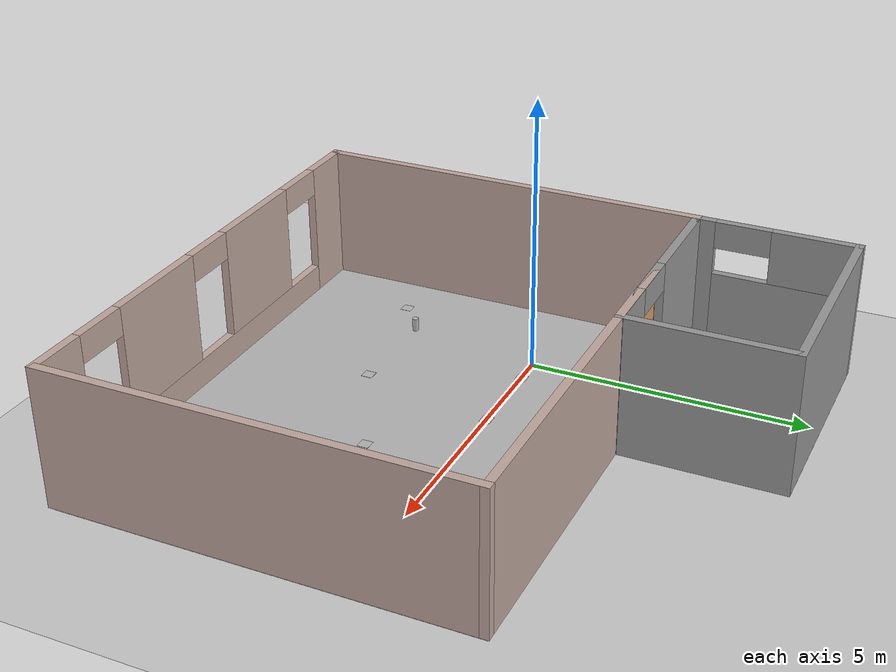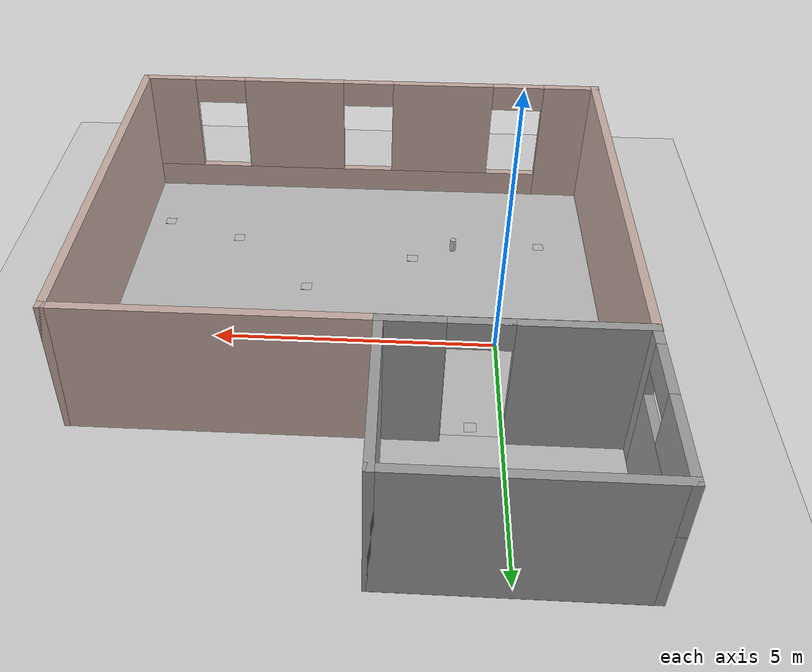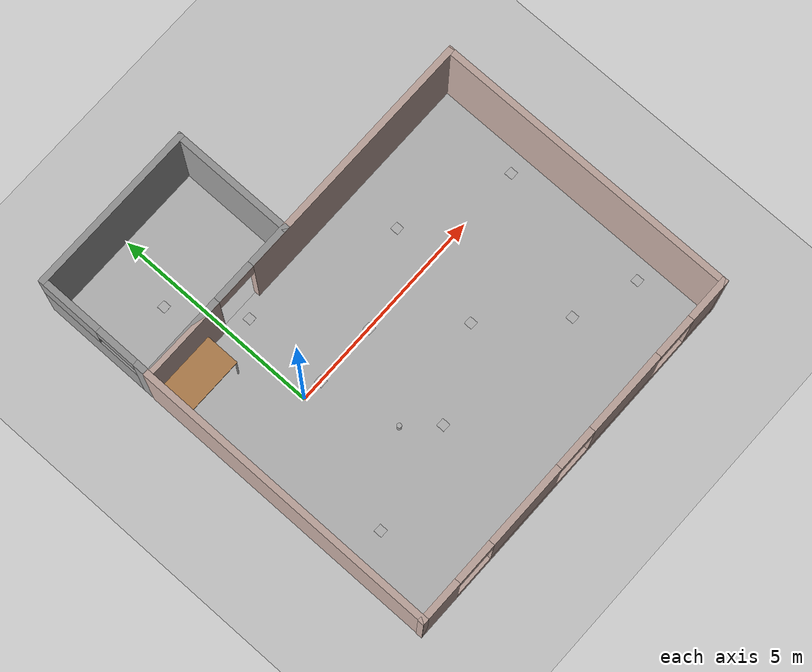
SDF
<sdf version="1.6">
 <world name="default">
  <light name="sun" type="directional">
   <pose>0 0 10 0 -0 0</pose>
   <diffuse>0.8 0.8 0.8 1</diffuse>
   <specular>0.1 0.1 0.1 1</specular>
   <attenuation>
    <range>1000</range>
    <constant>0.9</constant>
    <linear>0.01</linear>
    <quadratic>0.001</quadratic>
   </attenuation>
   <direction>-0.5 0.5 -1</direction>
  </light>
  <model name="ground_plane">
   <static>1</static>
   <link name="link">
    <collision name="collision">
     <geometry><plane><normal>0 0 1</normal><size>100 100</size></plane></geometry>
     <surface><friction><ode><mu>100</mu><mu2>50</mu2></ode></friction></surface>
    </collision>
    <visual name="visual">
     <cast_shadows>0</cast_shadows>
     <geometry><plane><normal>0 0 1</normal><size>100 100</size></plane></geometry>
     <material>
      <script><uri>file://media/materials/scripts/gazebo.material</uri><name>Gazebo/Grey</name></script>
     </material>
    </visual>
   </link>
  </model>
  <gravity>0 0 -9.8</gravity>
  <magnetic_field>6e-06 2.3e-05 -4.2e-05</magnetic_field>
  <atmosphere type="adiabatic"/>
  <physics name="default_physics" default="0" type="ode">
   <max_step_size>0.001</max_step_size>
   <real_time_factor>1</real_time_factor>
   <real_time_update_rate>1000</real_time_update_rate>
  </physics>
  <scene><ambient>0.4 0.4 0.4 1</ambient><background>0.7 0.7 0.7 1</background><shadows>1</shadows></scene>
  <spherical_coordinates>
   <surface_model>EARTH_WGS84</surface_model>
   <latitude_deg>0</latitude_deg>
   <longitude_deg>0</longitude_deg>
   <elevation>0</elevation>
   <heading_deg>0</heading_deg>
  </spherical_coordinates>
  <model name="Room">
   <pose>2.49494 -1.375 0 0 -0 0</pose>
   <link name="Wall_10">
    <collision name="Wall_10_Collision">
     <geometry><box><size>7.4 0.15 2.5</size></box></geometry>
     <pose>0 0 1.25 0 -0 0</pose>
    </collision>
    <visual name="Wall_10_Visual">
     <pose>0 0 1.25 0 -0 0</pose>
     <geometry><box><size>7.4 0.15 2.5</size></box></geometry>
     <material>
      <script><uri>file://media/materials/scripts/gazebo.material</uri><name>Gazebo/Grey</name></script>
      <ambient>0.760784 0.662745 0.627451 1</ambient>
     </material>
    </visual>
    <pose>-4.49494 0 0 0 -0 1.5708</pose>
   </link>
   <link name="Wall_12">
    <collision name="Wall_12_Collision">
     <geometry><box><size>7.4 0.15 2.5</size></box></geometry>
     <pose>0 0 1.25 0 -0 0</pose>
    </collision>
    <visual name="Wall_12_Visual">
     <pose>0 0 1.25 0 -0 0</pose>
     <geometry><box><size>7.4 0.15 2.5</size></box></geometry>
     <material>
      <script><uri>file://media/materials/scripts/gazebo.material</uri><name>Gazebo/Grey</name></script>
      <ambient>0.760784 0.662745 0.627451 1</ambient>
     </material>
    </visual>
    <pose>4.50506 0 0 0 -0 1.5708</pose>
   </link>
   <link name="Wall_3">
    <pose>0.005064 3.625 0 0 -0 0</pose>
    <visual name="Wall_3_Visual_0">
     <pose>-3.5375 0 1.25 0 -0 0</pose>
     <geometry><box><size>2.075 0.15 2.5</size></box></geometry>
     <material>
      <script><uri>file://media/materials/scripts/gazebo.material</uri><name>Gazebo/Grey</name></script>
      <ambient>0.760784 0.662745 0.627451 1</ambient>
     </material>
    </visual>
    <collision name="Wall_3_Collision_0">
     <geometry><box><size>2.075 0.15 2.5</size></box></geometry>
     <pose>-3.5375 0 1.25 0 -0 0</pose>
    </collision>
    <visual name="Wall_3_Visual_1">
     <pose>1.5375 0 1.25 0 -0 0</pose>
     <geometry><box><size>6.075 0.15 2.5</size></box></geometry>
     <material>
      <script><uri>file://media/materials/scripts/gazebo.material</uri><name>Gazebo/Grey</name></script>
      <ambient>0.760784 0.662745 0.627451 1</ambient>
     </material>
    </visual>
    <collision name="Wall_3_Collision_1">
     <geometry><box><size>6.075 0.15 2.5</size></box></geometry>
     <pose>1.5375 0 1.25 0 -0 0</pose>
    </collision>
    <visual name="Wall_3_Visual_2">
     <pose>-2 0 2.25 0 -0 0</pose>
     <geometry><box><size>1 0.15 0.5</size></box></geometry>
     <material>
      <script><uri>file://media/materials/scripts/gazebo.material</uri><name>Gazebo/Grey</name></script>
      <ambient>0.760784 0.662745 0.627451 1</ambient>
     </material>
    </visual>
    <collision name="Wall_3_Collision_2">
     <geometry><box><size>1 0.15 0.5</size></box></geometry>
     <pose>-2 0 2.25 0 -0 0</pose>
    </collision>
   </link>
   <link name="Wall_8">
    <pose>-0.005064 -3.625 0 0 -0 0</pose>
    <visual name="Wall_8_Visual_0">
     <pose>-4.03244 0 1.25 0 -0 0</pose>
     <geometry><box><size>1.08513 0.15 2.5</size></box></geometry>
     <material>
      <script><uri>file://media/materials/scripts/gazebo.material</uri><name>Gazebo/Grey</name></script>
      <ambient>0.760784 0.662745 0.627451 1</ambient>
     </material>
    </visual>
    <collision name="Wall_8_Collision_0">
     <geometry><box><size>1.08513 0.15 2.5</size></box></geometry>
     <pose>-4.03244 0 1.25 0 -0 0</pose>
    </collision>
    <visual name="Wall_8_Visual_1">
     <pose>0.542564 0 0.25 0 -0 0</pose>
     <geometry><box><size>8.06487 0.15 0.5</size></box></geometry>
     <material>
      <script><uri>file://media/materials/scripts/gazebo.material</uri><name>Gazebo/Grey</name></script>
      <ambient>0.760784 0.662745 0.627451 1</ambient>
     </material>
    </visual>
    <collision name="Wall_8_Collision_1">
     <geometry><box><size>8.06487 0.15 0.5</size></box></geometry>
     <pose>0.542564 0 0.25 0 -0 0</pose>
    </collision>
    <visual name="Wall_8_Visual_2">
     <pose>-1.48987 0 1.5 0 -0 0</pose>
     <geometry><box><size>2 0.15 2</size></box></geometry>
     <material>
      <script><uri>file://media/materials/scripts/gazebo.material</uri><name>Gazebo/Grey</name></script>
      <ambient>0.760784 0.662745 0.627451 1</ambient>
     </material>
    </visual>
    <collision name="Wall_8_Collision_2">
     <geometry><box><size>2 0.15 2</size></box></geometry>
     <pose>-1.48987 0 1.5 0 -0 0</pose>
    </collision>
    <visual name="Wall_8_Visual_3">
     <pose>1.51013 0 1.5 0 -0 0</pose>
     <geometry><box><size>2 0.15 2</size></box></geometry>
     <material>
      <script><uri>file://media/materials/scripts/gazebo.material</uri><name>Gazebo/Grey</name></script>
      <ambient>0.760784 0.662745 0.627451 1</ambient>
     </material>
    </visual>
    <collision name="Wall_8_Collision_3">
     <geometry><box><size>2 0.15 2</size></box></geometry>
     <pose>1.51013 0 1.5 0 -0 0</pose>
    </collision>
    <visual name="Wall_8_Visual_4">
     <pose>4.04256 0 1.5 0 -0 0</pose>
     <geometry><box><size>1.06487 0.15 2</size></box></geometry>
     <material>
      <script><uri>file://media/materials/scripts/gazebo.material</uri><name>Gazebo/Grey</name></script>
      <ambient>0.760784 0.662745 0.627451 1</ambient>
     </material>
    </visual>
    <collision name="Wall_8_Collision_4">
     <geometry><box><size>1.06487 0.15 2</size></box></geometry>
     <pose>4.04256 0 1.5 0 -0 0</pose>
    </collision>
    <visual name="Wall_8_Visual_5">
     <pose>-2.98987 0 2.25 0 -0 0</pose>
     <geometry><box><size>1 0.15 0.5</size></box></geometry>
     <material>
      <script><uri>file://media/materials/scripts/gazebo.material</uri><name>Gazebo/Grey</name></script>
      <ambient>0.760784 0.662745 0.627451 1</ambient>
     </material>
    </visual>
    <collision name="Wall_8_Collision_5">
     <geometry><box><size>1 0.15 0.5</size></box></geometry>
     <pose>-2.98987 0 2.25 0 -0 0</pose>
    </collision>
    <visual name="Wall_8_Visual_6">
     <pose>0.010128 0 2.25 0 -0 0</pose>
     <geometry><box><size>1 0.15 0.5</size></box></geometry>
     <material>
      <script><uri>file://media/materials/scripts/gazebo.material</uri><name>Gazebo/Grey</name></script>
      <ambient>0.760784 0.662745 0.627451 1</ambient>
     </material>
    </visual>
    <collision name="Wall_8_Collision_6">
     <geometry><box><size>1 0.15 0.5</size></box></geometry>
     <pose>0.010128 0 2.25 0 -0 0</pose>
    </collision>
    <visual name="Wall_8_Visual_7">
     <pose>3.01013 0 2.25 0 -0 0</pose>
     <geometry><box><size>1 0.15 0.5</size></box></geometry>
     <material>
      <script><uri>file://media/materials/scripts/gazebo.material</uri><name>Gazebo/Grey</name></script>
      <ambient>0.760784 0.662745 0.627451 1</ambient>
     </material>
    </visual>
    <collision name="Wall_8_Collision_7">
     <geometry><box><size>1 0.15 0.5</size></box></geometry>
     <pose>3.01013 0 2.25 0 -0 0</pose>
    </collision>
   </link>
   <static>1</static>
  </model>
  <model name="bathroom_3">
   <pose>0.008604 3.681 0 0 -0 0</pose>
   <link name="Wall_1">
    <pose>0 -1.425 0 0 -0 3.14159</pose>
    <visual name="Wall_1_Visual_0">
     <pose>-1.5375 0 1.25 0 -0 0</pose>
     <geometry><box><size>1.075 0.15 2.5</size></box></geometry>
     <material>
      <script><uri>file://media/materials/scripts/gazebo.material</uri><name>Gazebo/Grey</name></script>
      <ambient>1 1 1 1</ambient>
     </material>
    </visual>
    <collision name="Wall_1_Collision_0">
     <geometry><box><size>1.075 0.15 2.5</size></box></geometry>
     <pose>-1.5375 0 1.25 0 -0 0</pose>
    </collision>
    <visual name="Wall_1_Visual_1">
     <pose>1.0375 0 1.25 0 -0 0</pose>
     <geometry><box><size>2.075 0.15 2.5</size></box></geometry>
     <material>
      <script><uri>file://media/materials/scripts/gazebo.material</uri><name>Gazebo/Grey</name></script>
      <ambient>1 1 1 1</ambient>
     </material>
    </visual>
    <collision name="Wall_1_Collision_1">
     <geometry><box><size>2.075 0.15 2.5</size></box></geometry>
     <pose>1.0375 0 1.25 0 -0 0</pose>
    </collision>
    <visual name="Wall_1_Visual_2">
     <pose>-0.5 0 2.25 0 -0 0</pose>
     <geometry><box><size>1 0.15 0.5</size></box></geometry>
     <material>
      <script><uri>file://media/materials/scripts/gazebo.material</uri><name>Gazebo/Grey</name></script>
      <ambient>1 1 1 1</ambient>
     </material>
    </visual>
    <collision name="Wall_1_Collision_2">
     <geometry><box><size>1 0.15 0.5</size></box></geometry>
     <pose>-0.5 0 2.25 0 -0 0</pose>
    </collision>
   </link>
   <link name="Wall_2">
    <pose>-2 0 0 0 -0 1.5708</pose>
    <visual name="Wall_2_Visual_0">
     <pose>-1.28705 0 1.25 0 -0 0</pose>
     <geometry><box><size>0.425904 0.15 2.5</size></box></geometry>
     <material>
      <script><uri>file://media/materials/scripts/gazebo.material</uri><name>Gazebo/Grey</name></script>
      <ambient>1 1 1 1</ambient>
     </material>
    </visual>
    <collision name="Wall_2_Collision_0">
     <geometry><box><size>0.425904 0.15 2.5</size></box></geometry>
     <pose>-1.28705 0 1.25 0 -0 0</pose>
    </collision>
    <visual name="Wall_2_Visual_1">
     <pose>0.212952 0 0.75 0 -0 0</pose>
     <geometry><box><size>2.5741 0.15 1.5</size></box></geometry>
     <material>
      <script><uri>file://media/materials/scripts/gazebo.material</uri><name>Gazebo/Grey</name></script>
      <ambient>1 1 1 1</ambient>
     </material>
    </visual>
    <collision name="Wall_2_Collision_1">
     <geometry><box><size>2.5741 0.15 1.5</size></box></geometry>
     <pose>0.212952 0 0.75 0 -0 0</pose>
    </collision>
    <visual name="Wall_2_Visual_2">
     <pose>0.712952 0 2 0 -0 0</pose>
     <geometry><box><size>1.5741 0.15 1</size></box></geometry>
     <material>
      <script><uri>file://media/materials/scripts/gazebo.material</uri><name>Gazebo/Grey</name></script>
      <ambient>1 1 1 1</ambient>
     </material>
    </visual>
    <collision name="Wall_2_Collision_2">
     <geometry><box><size>1.5741 0.15 1</size></box></geometry>
     <pose>0.712952 0 2 0 -0 0</pose>
    </collision>
    <visual name="Wall_2_Visual_3">
     <pose>-0.574096 0 2.25 0 -0 0</pose>
     <geometry><box><size>1 0.15 0.5</size></box></geometry>
     <material>
      <script><uri>file://media/materials/scripts/gazebo.material</uri><name>Gazebo/Grey</name></script>
      <ambient>1 1 1 1</ambient>
     </material>
    </visual>
    <collision name="Wall_2_Collision_3">
     <geometry><box><size>1 0.15 0.5</size></box></geometry>
     <pose>-0.574096 0 2.25 0 -0 0</pose>
    </collision>
   </link>
   <link name="Wall_3">
    <collision name="Wall_3_Collision">
     <geometry><box><size>4.15 0.15 2.5</size></box></geometry>
     <pose>0 0 1.25 0 -0 0</pose>
    </collision>
    <visual name="Wall_3_Visual">
     <pose>0 0 1.25 0 -0 0</pose>
     <geometry><box><size>4.15 0.15 2.5</size></box></geometry>
     <material>
      <script><uri>file://media/materials/scripts/gazebo.material</uri><name>Gazebo/Grey</name></script>
      <ambient>1 1 1 1</ambient>
     </material>
    </visual>
    <pose>0 1.425 0 0 -0 0</pose>
   </link>
   <link name="Wall_4">
    <collision name="Wall_4_Collision">
     <geometry><box><size>3 0.15 2.5</size></box></geometry>
     <pose>0 0 1.25 0 -0 0</pose>
    </collision>
    <visual name="Wall_4_Visual">
     <pose>0 0 1.25 0 -0 0</pose>
     <geometry><box><size>3 0.15 2.5</size></box></geometry>
     <material>
      <script><uri>file://media/materials/scripts/gazebo.material</uri><name>Gazebo/Grey</name></script>
      <ambient>1 1 1 1</ambient>
     </material>
    </visual>
    <pose>2 0 0 0 0 -1.5708</pose>
   </link>
   <static>1</static>
  </model>
  <model name="bathroom_floor">
   <static>1</static>
   <link name="link">
    <visual name="visual">
     <cast_shadows>0</cast_shadows>
     <geometry><box><size>4 3 0.005</size></box></geometry>
     <material>
      <script>
       <uri>model://bathroom_floor/materials/scripts</uri>
       <uri>model://bathroom_floor/materials/textures</uri>
       <name>bathroom_floor/Tile</name>
      </script>
     </material>
    </visual>
   </link>
   <pose>0.028247 3.68109 0 0 -0 0</pose>
  </model>
  <model name="room_floor">
   <static>1</static>
   <link name="link">
    <visual name="visual">
     <cast_shadows>0</cast_shadows>
     <geometry><box><size>9 7.25 0.005</size></box></geometry>
     <material>
      <script>
       <uri>model://room_floor/materials/scripts</uri>
       <uri>model://room_floor/materials/textures</uri>
       <name>room_floor/Terrazzo</name>
      </script>
     </material>
    </visual>
   </link>
   <pose>2.57641 -1.33129 0 0 -0 0</pose>
  </model>
  <model name="beer">
   <link name="link">
    <pose>0 0 0.115 0 -0 0</pose>
    <inertial>
     <mass>0.39</mass>
     <inertia><ixx>0.00058</ixx><ixy>0</ixy><ixz>0</ixz><iyy>0.00058</iyy><iyz>0</iyz><izz>0.00019</izz></inertia>
    </inertial>
    <collision name="collision">
     <geometry><cylinder><radius>0.055</radius><length>0.23</length></cylinder></geometry>
    </collision>
    <visual name="visual">
     <geometry><cylinder><radius>0.055</radius><length>0.23</length></cylinder></geometry>
     <material>
      <script>
       <uri>model://beer/materials/scripts</uri>
       <uri>model://beer/materials/textures</uri>
       <name>Beer/Diffuse</name>
      </script>
     </material>
    </visual>
   </link>
   <pose>0.759398 -1.93374 0.659991 1.1e-05 -2e-06 0.000655</pose>
  </model>
  <model name="table_1">
   <static>0</static>
   <link name="link">
    <collision name="surface">
     <pose>0 0 1 0 -0 0</pose>
     <geometry><box><size>1.5 0.8 0.03</size></box></geometry>
     <surface><friction><ode><mu>0.6</mu><mu2>0.6</mu2></ode></friction></surface>
    </collision>
    <visual name="visual1">
     <pose>0 0 1 0 -0 0</pose>
     <geometry><box><size>1.4 0.8 0.04</size></box></geometry>
     <material>
      <script><uri>file://media/materials/scripts/gazebo.material</uri><name>Gazebo/Wood</name></script>
     </material>
    </visual>
    <collision name="front_left_leg">
     <pose>0.68 0.38 0.5 0 -0 0</pose>
     <geometry><cylinder><radius>0.02</radius><length>1</length></cylinder></geometry>
    </collision>
    <visual name="front_left_leg">
     <pose>0.68 0.38 0.5 0 -0 0</pose>
     <geometry><cylinder><radius>0.02</radius><length>1</length></cylinder></geometry>
     <material>
      <script><uri>file://media/materials/scripts/gazebo.material</uri><name>Gazebo/Grey</name></script>
     </material>
    </visual>
    <collision name="front_right_leg">
     <pose>0.68 -0.38 0.5 0 -0 0</pose>
     <geometry><cylinder><radius>0.02</radius><length>1</length></cylinder></geometry>
    </collision>
    <visual name="front_right_leg">
     <pose>0.68 -0.38 0.5 0 -0 0</pose>
     <geometry><cylinder><radius>0.02</radius><length>1</length></cylinder></geometry>
     <material>
      <script><uri>file://media/materials/scripts/gazebo.material</uri><name>Gazebo/Grey</name></script>
     </material>
    </visual>
    <collision name="back_right_leg">
     <pose>-0.68 -0.38 0.5 0 -0 0</pose>
     <geometry><cylinder><radius>0.02</radius><length>1</length></cylinder></geometry>
    </collision>
    <visual name="back_right_leg">
     <pose>-0.68 -0.38 0.5 0 -0 0</pose>
     <geometry><cylinder><radius>0.02</radius><length>1</length></cylinder></geometry>
     <material>
      <script><uri>file://media/materials/scripts/gazebo.material</uri><name>Gazebo/Grey</name></script>
     </material>
    </visual>
    <collision name="back_left_leg">
     <pose>-0.68 0.38 0.5 0 -0 0</pose>
     <geometry><cylinder><radius>0.02</radius><length>1</length></cylinder></geometry>
    </collision>
    <visual name="back_left_leg">
     <pose>-0.68 0.38 0.5 0 -0 0</pose>
     <geometry><cylinder><radius>0.02</radius><length>1</length></cylinder></geometry>
     <material>
      <script><uri>file://media/materials/scripts/gazebo.material</uri><name>Gazebo/Grey</name></script>
     </material>
    </visual>
    <inertial>
     <inertia><ixx>1</ixx><ixy>0</ixy><ixz>0</ixz><iyy>1</iyy><iyz>0</iyz><izz>1</izz></inertia>
     <mass>1</mass>
    </inertial>
   </link>
   <pose>-1.19044 1.775 0.010901 -0 0.015575 2e-06</pose>
  </model>
  <model name="qr-O">
   <static>1</static>
   <link name="link">
    <visual name="visual">
     <cast_shadows>0</cast_shadows>
     <geometry><box><size>0.2 0.2 0.01</size></box></geometry>
     <material>
      <script>
       <uri>model://qr-O/materials/scripts</uri>
       <uri>model://qr-O/materials/textures</uri>
       <name>qr-O/Image</name>
      </script>
     </material>
    </visual>
   </link>
   <pose>0.5 0 0 0 -0 1.5708</pose>
  </model>
  <model name="qr-A">
   <static>1</static>
   <link name="link">
    <visual name="visual">
     <cast_shadows>0</cast_shadows>
     <geometry><box><size>0.2 0.2 0.01</size></box></geometry>
     <material>
      <script>
       <uri>model://qr-A/materials/scripts</uri>
       <uri>model://qr-A/materials/textures</uri>
       <name>qr-A/Image</name>
      </script>
     </material>
    </visual>
   </link>
   <pose>0.5 2 0 0 -0 1.5708</pose>
  </model>
  <model name="qr-B">
   <static>1</static>
   <link name="link">
    <visual name="visual">
     <cast_shadows>0</cast_shadows>
     <geometry><box><size>0.2 0.2 0.01</size></box></geometry>
     <material>
      <script>
       <uri>model://qr-B/materials/scripts</uri>
       <uri>model://qr-B/materials/textures</uri>
       <name>qr-B/Image</name>
      </script>
     </material>
    </visual>
   </link>
   <pose>-0.5 3.5 0 0 -0 1.5708</pose>
  </model>
  <model name="qr-C">
   <static>1</static>
   <link name="link">
    <visual name="visual">
     <cast_shadows>0</cast_shadows>
     <geometry><box><size>0.2 0.2 0.01</size></box></geometry>
     <material>
      <script>
       <uri>model://qr-C/materials/scripts</uri>
       <uri>model://qr-C/materials/textures</uri>
       <name>qr-C/Image</name>
      </script>
     </material>
    </visual>
   </link>
   <pose>-1 -3 0 0 -0 1.5708</pose>
  </model>
  <model name="qr-D">
   <static>1</static>
   <link name="link">
    <visual name="visual">
     <cast_shadows>0</cast_shadows>
     <geometry><box><size>0.2 0.2 0.01</size></box></geometry>
     <material>
      <script>
       <uri>model://qr-D/materials/scripts</uri>
       <uri>model://qr-D/materials/textures</uri>
       <name>qr-D/Image</name>
      </script>
     </material>
    </visual>
   </link>
   <pose>2 0 0 0 -0 1.5708</pose>
  </model>
  <model name="qr-E">
   <static>1</static>
   <link name="link">
    <visual name="visual">
     <cast_shadows>0</cast_shadows>
     <geometry><box><size>0.2 0.2 0.01</size></box></geometry>
     <material>
      <script>
       <uri>model://qr-E/materials/scripts</uri>
       <uri>model://qr-E/materials/textures</uri>
       <name>qr-E/Image</name>
      </script>
     </material>
    </visual>
   </link>
   <pose>4 1 0 0 -0 1.5708</pose>
  </model>
  <model name="qr-F">
   <static>1</static>
   <link name="link">
    <visual name="visual">
     <cast_shadows>0</cast_shadows>
     <geometry><box><size>0.2 0.2 0.01</size></box></geometry>
     <material>
      <script>
       <uri>model://qr-F/materials/scripts</uri>
       <uri>model://qr-F/materials/textures</uri>
       <name>qr-F/Image</name>
      </script>
     </material>
    </visual>
   </link>
   <pose>3.5 -1.5 0 0 -0 1.5708</pose>
  </model>
  <model name="qr-G">
   <static>1</static>
   <link name="link">
    <visual name="visual">
     <cast_shadows>0</cast_shadows>
     <geometry><box><size>0.2 0.2 0.01</size></box></geometry>
     <material>
      <script>
       <uri>model://qr-G/materials/scripts</uri>
       <uri>model://qr-G/materials/textures</uri>
       <name>qr-G/Image</name>
      </script>
     </material>
    </visual>
   </link>
   <pose>1.5 -2.5 0 0 -0 1.5708</pose>
  </model>
  <model name="qr-I">
   <static>1</static>
   <link name="link">
    <visual name="visual">
     <cast_shadows>0</cast_shadows>
     <geometry><box><size>0.2 0.2 0.01</size></box></geometry>
     <material>
      <script>
       <uri>model://qr-I/materials/scripts</uri>
       <uri>model://qr-I/materials/textures</uri>
       <name>qr-I/Image</name>
      </script>
     </material>
    </visual>
   </link>
   <pose>6.5 -3.5 0 0 -0 1.5708</pose>
  </model>
  <model name="qr-J">
   <static>1</static>
   <link name="link">
    <visual name="visual">
     <cast_shadows>0</cast_shadows>
     <geometry><box><size>0.2 0.2 0.01</size></box></geometry>
     <material>
      <script>
       <uri>model://qr-J/materials/scripts</uri>
       <uri>model://qr-J/materials/textures</uri>
       <name>qr-J/Image</name>
      </script>
     </material>
    </visual>
   </link>
   <pose>5 -3 0 0 -0 1.5708</pose>
  </model>
  <model name="qr-H">
   <static>1</static>
   <link name="link">
    <visual name="visual">
     <cast_shadows>0</cast_shadows>
     <geometry><box><size>0.2 0.2 0.01</size></box></geometry>
     <material>
      <script>
       <uri>model://qr-H/materials/scripts</uri>
       <uri>model://qr-H/materials/textures</uri>
       <name>qr-H/Image</name>
      </script>
     </material>
    </visual>
   </link>
   <pose>6.5 0 0 0 -0 1.5708</pose>
  </model>
 </world>
</sdf>
